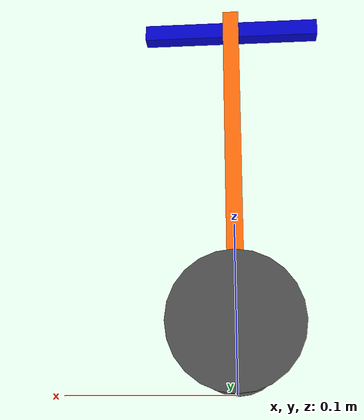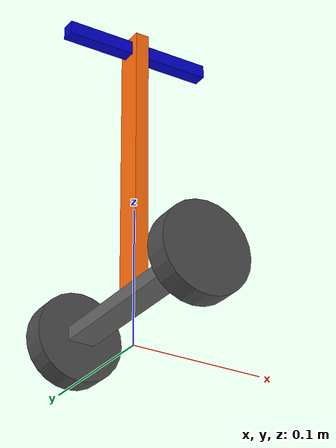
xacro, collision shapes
<?xml version="1.0" ?>
<robot name="SetGuai" xmlns:xacro="http://ros.org/wiki/xacro">
  <!--xacro:include filename="$(find description)/urdf/common_properties.xacro"/-->
  <xacro:include filename="$(find description)/urdf/setguai.gazebo.xacro"/>
  <xacro:include filename="$(find description)/urdf/setguai_transmision.xacro"/>

  <xacro:property name="masa1" value="0.600" />
  <xacro:property name="masa2" value="0.600" />
  <xacro:property name="positiva" value="0.1" />
  <xacro:property name="negativa" value="0.01" />

  <link name="base_footprint"/>

  <joint name="base_joint" type="fixed">
    <parent link="base_footprint"/>
    <child link="base_link"/>
    <origin xyz="0.0 0.0 0.033" rpy="0 0 0"/> <!-- altura de radio -->
  </joint>

  <link name="base_link">
    <visual>
      <origin xyz="0.0 0.0 0.0" rpy="0 0 0"/>
      <geometry>
        <box size="0.02 0.14 0.01"/>
      </geometry>
      <material name="light_black"/>
    </visual>

    <collision>
      <origin xyz="0.0 0.0 0.0" rpy="0 0 0"/>
      <geometry>
        <box size="0.02 0.14 0.01"/>
      </geometry>
    </collision>

    <inertial>
      <origin xyz="0.0 0.0 0.0" rpy="0 0 0"/>
      <mass value= "${masa1}"/>
      <inertia ixx="${masa1 / 12.0 * ((0.14 * 0.14) + (0.01 * 0.01))}" ixy="0" ixz="0"
               iyy="${masa1 / 12.0 * ((0.02 * 0.02) + (0.01 * 0.01))}" iyz="0"
               izz="${masa1 / 12.0 * ((0.02 * 0.02) + (0.14 * 0.14))}" />
    </inertial>
  </link>

  <joint name="wheel_left_joint" type="continuous">
    <parent link="base_link"/>
    <child link="wheel_left_link"/>
    <origin xyz="0.0 0.08 0.00" rpy="-1.57 0 0"/>
    <axis xyz="0 0 1"/>
  </joint>

  <link name="wheel_left_link">
    <visual>
      <origin xyz="0 0 0" rpy="1.57 0 0"/>
      <geometry>
        <mesh filename="package://description/meshes/wheels/left_tire.stl" scale="0.001 0.001 0.001"/>
      </geometry>
      <material name="dark"/>
    </visual>

    <collision>
      <origin xyz="0 0 0" rpy="0 0 0"/>
      <geometry>
        <cylinder length="0.018" radius="0.033"/>
      </geometry>
    </collision>

    <inertial>
      <origin xyz="0 0 0" />
      <mass value="0.25" />
      <inertia ixx="1.1175580e-05" ixy="-4.2369783e-11" ixz="-5.9381719e-09"
               iyy="1.1192413e-05" iyz="-1.4400107e-11"
               izz="2.0712558e-05" />
      </inertial>
  </link>

  <joint name="wheel_right_joint" type="continuous">
    <parent link="base_link"/>
    <child link="wheel_right_link"/>
    <origin xyz="0.0 -0.080 0.00" rpy="-1.57 0 0"/>
    <axis xyz="0 0 1"/>
  </joint>

  <link name="wheel_right_link">
    <visual>
      <origin xyz="0 0 0" rpy="1.57 0 0"/>
      <geometry>
        <mesh filename="package://description/meshes/wheels/right_tire.stl" scale="0.001 0.001 0.001"/>
      </geometry>
      <material name="dark"/>
    </visual>

    <collision>
      <origin xyz="0 0 0" rpy="0 0 0"/>
      <geometry>
        <cylinder length="0.018" radius="0.033"/>
      </geometry>
    </collision>

    <inertial>
      <origin xyz="0 0 0" />
      <mass value="0.25" />
      <inertia ixx="1.1175580e-05" ixy="-4.2369783e-11" ixz="-5.9381719e-09"
               iyy="1.1192413e-05" iyz="-1.4400107e-11"
               izz="2.0712558e-05" />
      </inertial>
  </link>

  <joint name="pendulo_joint" type="fixed">
    <parent link="base_link"/>
    <child link="pendulo_link"/>
    <origin xyz="0.0 0.0 0.105" rpy="0 0 0"/>
  </joint>

  <link name="pendulo_link">
    <visual>
      <origin xyz="0.0 0.0 0.0" rpy="0 0 0"/>
      <geometry>
        <box size="0.01 0.02 0.2"/>
      </geometry>
      <material name="orange"/>
    </visual>
    <collision>
      <origin xyz="0.0 0.0 0.0" rpy="0 0 0"/>
      <geometry>
        <box size="0.01 0.02 0.2"/>
      </geometry>
    </collision>

    <inertial>
      <origin xyz="0 0 0" />
      <mass value="${masa2}" />
      <inertia ixx="${masa2 / 12.0 * ((0.02 * 0.02) + (0.2 * 0.2))}" ixy="0" ixz="0"
               iyy="${masa2 / 12.0 * ((0.01 * 0.01) + (0.2 * 0.2))}" iyz="0"
               izz="${masa2 / 12.0 * ((0.02 * 0.02) + (0.01 * 0.01))}" />
    </inertial>
  </link>

  <joint name="imu_joint" type="fixed">
    <parent link="base_link"/>
    <child link="imu_link"/>
    <origin xyz="0.005 0.0 0.195" rpy="0 0 0"/>
  </joint>

  <link name="imu_link">
     <visual name="visual">
        <origin xyz="0.025 0.0 0.0" rpy="0 0 0"/>
        <geometry>
          <box size="0.05 0.01 0.01"/>
        </geometry>
        <material name="blue"/>
      </visual>
      <collision name="collision">
        <origin xyz="0.025 0.0 0.0" rpy="0 0 0"/>
        <geometry>
          <box size="0.05 0.01 0.01"/>
        </geometry>
      </collision>
      <inertial>
        <inertia ixx="0.1" ixy="0" ixz="0"
               iyy="0.1" iyz="0"
               izz="0.1" />
        <mass value="${positiva}" />
      </inertial>
  </link>

  <joint name="pepita" type="fixed">
    <parent link="base_link"/>
    <child link="pepita_link"/>
    <origin xyz="-0.005 0.0 0.195" rpy="0 0 0"/>
  </joint>

  <link name="pepita_link">
     <visual name="visual">
        <origin xyz="-0.025 0.0 0.0" rpy="0 0 0"/>
        <geometry>
          <box size="0.05 0.01 0.01"/>
        </geometry>
        <material name="blue"/>
      </visual>
      <collision name="collision">
        <origin xyz="-0.025 0.0 0.0" rpy="0 0 0"/>
        <geometry>
          <box size="0.05 0.01 0.01"/>
        </geometry>
      </collision>
      <inertial>
        <inertia ixx="0.1" ixy="0" ixz="0"
               iyy="0.1" iyz="0"
               izz="0.1" />
        <mass value="${negativa}" />
      </inertial>
  </link>

</robot>

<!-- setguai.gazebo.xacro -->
<robot name="SetGuai" xmlns:xacro="http://ros.org/wiki/xacro">
  <xacro:include filename="$(find description)/urdf/common_properties.xacro"/>
  <gazebo reference="base_link">
    <material>Gazebo/DarkGrey</material>
  </gazebo>
  <gazebo reference="pendulo_link">
    <material>dark</material>
  </gazebo>

  <gazebo reference="pendulo_joint">
    <preserveFixedJoint>true</preserveFixedJoint>
  </gazebo>
  <gazebo reference="imu_joint">
    <preserveFixedJoint>true</preserveFixedJoint>
  </gazebo>

  <gazebo reference="wheel_left_link">
    <mu1>1000</mu1>
    <mu2>1000</mu2>
    <kp>1000000.0</kp>
    <kd>10.0</kd>
    <minDepth>0.001</minDepth>
    <maxVel>0.1</maxVel>
    <fdir1>1 0 0</fdir1>
    <material>Gazebo/FlatBlack</material>
  </gazebo>

  <gazebo reference="wheel_right_link">
    <mu1>1000</mu1>
    <mu2>1000</mu2>
    <kp>1000000.0</kp>
    <kd>10.0</kd>
    <minDepth>0.001</minDepth>
    <maxVel>0.1</maxVel>
    <fdir1>1 0 0</fdir1>
    <material>Gazebo/FlatBlack</material>
  </gazebo>

  <gazebo>
    <plugin name="SetGuai_controller" filename="libgazebo_ros_diff_drive.so">
      <commandTopic>cmd_vel</commandTopic>
      <odometryTopic>odom</odometryTopic>
      <odometryFrame>odom</odometryFrame>  <!-- odom -->
      <odometrySource>world</odometrySource>
      <publishOdomTF>true</publishOdomTF>
      <robotBaseFrame>base_footprint</robotBaseFrame>
      <publishWheelTF>false</publishWheelTF>
      <publishTf>true</publishTf>
      <publishWheelJointState>true</publishWheelJointState>
      <legacyMode>false</legacyMode>
      <updateRate>200</updateRate>
      <leftJoint>wheel_left_joint</leftJoint>
      <rightJoint>wheel_right_joint</rightJoint>
      <wheelSeparation>0.160</wheelSeparation>
      <wheelDiameter>0.066</wheelDiameter>
      <wheelAcceleration>15</wheelAcceleration>
      <wheelTorque>10</wheelTorque>
      <rosDebugLevel>na</rosDebugLevel>
    </plugin>
  </gazebo>

  <gazebo>
    <plugin name="imu_plugin" filename="libgazebo_ros_imu.so">
      <alwaysOn>true</alwaysOn>
      <bodyName>imu_link</bodyName>
      <frameName>imu_link</frameName>
      <topicName>imu</topicName>
      <serviceName>imu_service</serviceName>
      <gaussianNoise>0.0</gaussianNoise>
      <updateRate>200</updateRate>
      <imu>
        <noise>
          <type>gaussian</type>
          <rate>
            <mean>0.0</mean>
            <stddev>2e-4</stddev>
            <bias_mean>0.0000075</bias_mean>
            <bias_stddev>0.0000008</bias_stddev>
          </rate>
          <accel>
            <mean>0.0</mean>
            <stddev>1.7e-2</stddev>
            <bias_mean>0.1</bias_mean>
            <bias_stddev>0.001</bias_stddev>
          </accel>
        </noise>
      </imu>
    </plugin>
  </gazebo>

</robot>

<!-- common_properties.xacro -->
<robot name="SetGuai" xmlns:xacro="http://ros.org/wiki/xacro">

  <!-- Init colour -->
  <material name="black">
      <color rgba="0.0 0.0 0.0 1.0"/>
  </material>

  <material name="dark">
    <color rgba="0.3 0.3 0.3 1.0"/>
  </material>
  <material name="light_black">
    <color rgba="0.4 0.4 0.4 1.0"/>
  </material>

  <material name="blue">
    <color rgba="0.0 0.0 0.8 1.0"/>
  </material>

  <material name="green">
    <color rgba="0.0 0.8 0.0 1.0"/>
  </material>

  <material name="grey">
    <color rgba="0.5 0.5 0.5 1.0"/>
  </material>

  <material name="orange">
    <color rgba="${255/255} ${108/255} ${10/255} 1.0"/>
  </material>

  <material name="brown">
    <color rgba="${222/255} ${207/255} ${195/255} 1.0"/>
  </material>

  <material name="red">
    <color rgba="0.8 0.0 0.0 1.0"/>
  </material>

  <material name="white">
    <color rgba="1.0 1.0 1.0 1.0"/>
  </material>
</robot>
